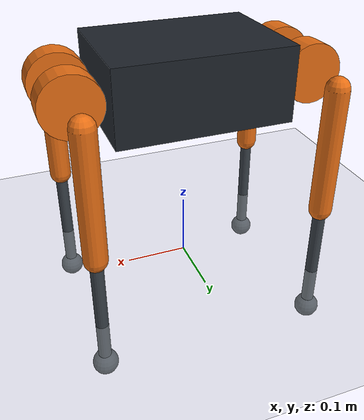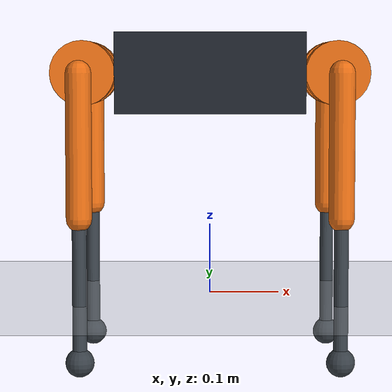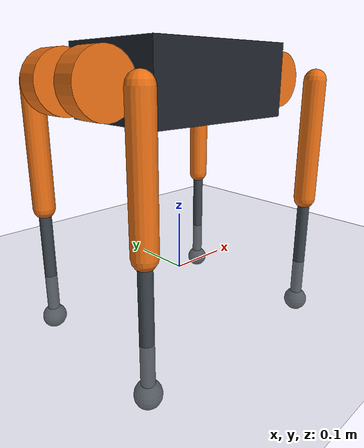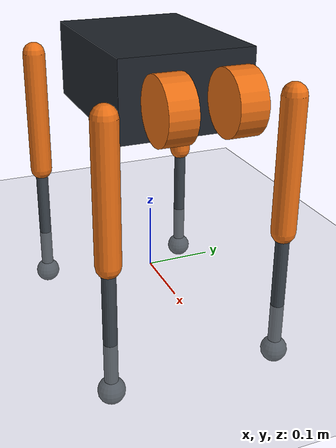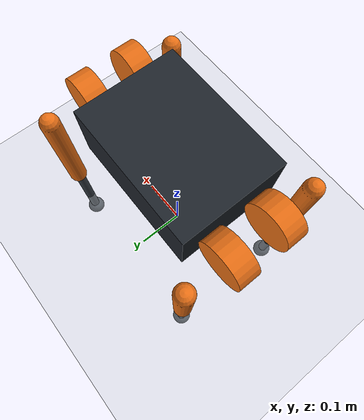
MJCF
<mujoco model="qiayuanl_legged_control_a1">
  <compiler angle="radian" inertiafromgeom="false"/>
  <option timestep="0.002" gravity="0 0 -9.81" integrator="implicitfast"
          cone="pyramidal" iterations="50"/>
  <default>
    <joint damping="0" frictionloss="0" armature="0.01"/>
    <geom rgba="0.22 0.25 0.28 1" condim="3"/>
    <default class="visual">
      <geom contype="0" conaffinity="0"/>
    </default>
    <default class="foot">
      <geom friction="0.6 0.01 0.001" solref="0.004 1"/>
    </default>
    <motor ctrllimited="true" ctrlrange="-33.5 33.5"/>
  </default>

  <worldbody>
    <light pos="0 0 2.5" dir="0 0 -1"/>
    <geom name="floor" type="plane" size="3 3 0.1" rgba="0.75 0.77 0.80 1"
          friction="0.6 0.01 0.001"/>
    <body name="trunk" pos="0 0 0.32">
      <freejoint name="floating_base"/>
      <inertial pos="0 0.0041 -0.0005" mass="6.0"
                fullinertia="0.0158533 0.0377999 0.0456542 -0.0000366 -0.0000611 -0.0000275"/>
      <geom name="trunk_geom" type="box" size="0.1335 0.097 0.057"
            rgba="0.12 0.14 0.17 1"/>
      <site name="imu" pos="0 0 0" size="0.005"/>

      <!-- LF: robot.xacro leg origin (+0.1805,+0.047,0), mirror=+1. -->
      <body name="LF_hip" pos="0.1805 0.047 0">
        <joint name="LF_HAA" axis="1 0 0" range="-0.802851456 0.802851456"/>
        <inertial pos="-0.003875 0.001622 0.000042" mass="0.595"
                  fullinertia="0.000402747 0.000691123 0.000487919 -0.000008709 -0.000000297 -0.000000545"/>
        <geom class="visual" type="cylinder" size="0.046 0.02" euler="1.5707963 0 0"
              rgba="0.90 0.43 0.08 1"/>
        <body name="LF_thigh" pos="0 0.0838 0">
          <joint name="LF_HFE" axis="0 1 0" range="-1.047197551 4.188790205"/>
          <inertial pos="-0.003574 -0.019529 -0.030323" mass="0.888"
                    fullinertia="0.005251806 0.005000475 0.001110200 -0.000002168 0.000346889 -0.000028174"/>
          <geom class="visual" type="capsule" fromto="0 0 0 0 0 -0.2" size="0.018"
                rgba="0.90 0.43 0.08 1"/>
          <body name="LF_calf" pos="0 0 -0.2">
            <joint name="LF_KFE" axis="0 1 0" range="-2.696533694 -0.916297857"/>
            <inertial pos="0.007105 -0.000239 -0.096933" mass="0.151"
                      fullinertia="0.002344758 0.002360755 0.000031158 0 -0.000141275 0"/>
            <geom class="visual" type="capsule" fromto="0 0 0 0 0 -0.2" size="0.01"/>
            <body name="LF_FOOT" pos="0 0 -0.2">
              <inertial pos="0 0 0" mass="0.06" diaginertia="0.0000096 0.0000096 0.0000096"/>
              <geom name="LF_foot_geom" class="foot" type="sphere" size="0.02"/>
              <site name="LF_FOOT" size="0.012" rgba="1 0.1 0.1 1"/>
            </body>
          </body>
        </body>
      </body>

      <!-- LH: robot.xacro leg origin (-0.1805,+0.047,0), mirror=+1. -->
      <body name="LH_hip" pos="-0.1805 0.047 0">
        <joint name="LH_HAA" axis="1 0 0" range="-0.802851456 0.802851456"/>
        <inertial pos="0.003875 0.001622 0.000042" mass="0.595"
                  fullinertia="0.000402747 0.000691123 0.000487919 0.000008709 0.000000297 -0.000000545"/>
        <geom class="visual" type="cylinder" size="0.046 0.02" euler="1.5707963 0 0"
              rgba="0.90 0.43 0.08 1"/>
        <body name="LH_thigh" pos="0 0.0838 0">
          <joint name="LH_HFE" axis="0 1 0" range="-1.047197551 4.188790205"/>
          <inertial pos="-0.003574 -0.019529 -0.030323" mass="0.888"
                    fullinertia="0.005251806 0.005000475 0.001110200 -0.000002168 0.000346889 -0.000028174"/>
          <geom class="visual" type="capsule" fromto="0 0 0 0 0 -0.2" size="0.018"
                rgba="0.90 0.43 0.08 1"/>
          <body name="LH_calf" pos="0 0 -0.2">
            <joint name="LH_KFE" axis="0 1 0" range="-2.696533694 -0.916297857"/>
            <inertial pos="0.007105 -0.000239 -0.096933" mass="0.151"
                      fullinertia="0.002344758 0.002360755 0.000031158 0 -0.000141275 0"/>
            <geom class="visual" type="capsule" fromto="0 0 0 0 0 -0.2" size="0.01"/>
            <body name="LH_FOOT" pos="0 0 -0.2">
              <inertial pos="0 0 0" mass="0.06" diaginertia="0.0000096 0.0000096 0.0000096"/>
              <geom name="LH_foot_geom" class="foot" type="sphere" size="0.02"/>
              <site name="LH_FOOT" size="0.012" rgba="1 0.1 0.1 1"/>
            </body>
          </body>
        </body>
      </body>

      <!-- RF: robot.xacro leg origin (+0.1805,-0.047,0), mirror=-1. -->
      <body name="RF_hip" pos="0.1805 -0.047 0">
        <joint name="RF_HAA" axis="1 0 0" range="-0.802851456 0.802851456"/>
        <inertial pos="-0.003875 -0.001622 0.000042" mass="0.595"
                  fullinertia="0.000402747 0.000691123 0.000487919 0.000008709 -0.000000297 0.000000545"/>
        <geom class="visual" type="cylinder" size="0.046 0.02" euler="1.5707963 0 0"
              rgba="0.90 0.43 0.08 1"/>
        <body name="RF_thigh" pos="0 -0.0838 0">
          <joint name="RF_HFE" axis="0 1 0" range="-1.047197551 4.188790205"/>
          <inertial pos="-0.003574 0.019529 -0.030323" mass="0.888"
                    fullinertia="0.005251806 0.005000475 0.001110200 0.000002168 0.000346889 0.000028174"/>
          <geom class="visual" type="capsule" fromto="0 0 0 0 0 -0.2" size="0.018"
                rgba="0.90 0.43 0.08 1"/>
          <body name="RF_calf" pos="0 0 -0.2">
            <joint name="RF_KFE" axis="0 1 0" range="-2.696533694 -0.916297857"/>
            <inertial pos="0.007105 -0.000239 -0.096933" mass="0.151"
                      fullinertia="0.002344758 0.002360755 0.000031158 0 -0.000141275 0"/>
            <geom class="visual" type="capsule" fromto="0 0 0 0 0 -0.2" size="0.01"/>
            <body name="RF_FOOT" pos="0 0 -0.2">
              <inertial pos="0 0 0" mass="0.06" diaginertia="0.0000096 0.0000096 0.0000096"/>
              <geom name="RF_foot_geom" class="foot" type="sphere" size="0.02"/>
              <site name="RF_FOOT" size="0.012" rgba="1 0.1 0.1 1"/>
            </body>
          </body>
        </body>
      </body>

      <!-- RH: robot.xacro leg origin (-0.1805,-0.047,0), mirror=-1. -->
      <body name="RH_hip" pos="-0.1805 -0.047 0">
        <joint name="RH_HAA" axis="1 0 0" range="-0.802851456 0.802851456"/>
        <inertial pos="0.003875 -0.001622 0.000042" mass="0.595"
                  fullinertia="0.000402747 0.000691123 0.000487919 -0.000008709 0.000000297 0.000000545"/>
        <geom class="visual" type="cylinder" size="0.046 0.02" euler="1.5707963 0 0"
              rgba="0.90 0.43 0.08 1"/>
        <body name="RH_thigh" pos="0 -0.0838 0">
          <joint name="RH_HFE" axis="0 1 0" range="-1.047197551 4.188790205"/>
          <inertial pos="-0.003574 0.019529 -0.030323" mass="0.888"
                    fullinertia="0.005251806 0.005000475 0.001110200 0.000002168 0.000346889 0.000028174"/>
          <geom class="visual" type="capsule" fromto="0 0 0 0 0 -0.2" size="0.018"
                rgba="0.90 0.43 0.08 1"/>
          <body name="RH_calf" pos="0 0 -0.2">
            <joint name="RH_KFE" axis="0 1 0" range="-2.696533694 -0.916297857"/>
            <inertial pos="0.007105 -0.000239 -0.096933" mass="0.151"
                      fullinertia="0.002344758 0.002360755 0.000031158 0 -0.000141275 0"/>
            <geom class="visual" type="capsule" fromto="0 0 0 0 0 -0.2" size="0.01"/>
            <body name="RH_FOOT" pos="0 0 -0.2">
              <inertial pos="0 0 0" mass="0.06" diaginertia="0.0000096 0.0000096 0.0000096"/>
              <geom name="RH_foot_geom" class="foot" type="sphere" size="0.02"/>
              <site name="RH_FOOT" size="0.012" rgba="1 0.1 0.1 1"/>
            </body>
          </body>
        </body>
      </body>
    </body>
  </worldbody>

  <!-- LeggedController.cpp lines 54-55 joint order. -->
  <actuator>
    <motor name="LF_HAA" joint="LF_HAA"/><motor name="LF_HFE" joint="LF_HFE"/><motor name="LF_KFE" joint="LF_KFE"/>
    <motor name="LH_HAA" joint="LH_HAA"/><motor name="LH_HFE" joint="LH_HFE"/><motor name="LH_KFE" joint="LH_KFE"/>
    <motor name="RF_HAA" joint="RF_HAA"/><motor name="RF_HFE" joint="RF_HFE"/><motor name="RF_KFE" joint="RF_KFE"/>
    <motor name="RH_HAA" joint="RH_HAA"/><motor name="RH_HFE" joint="RH_HFE"/><motor name="RH_KFE" joint="RH_KFE"/>
  </actuator>
</mujoco>
